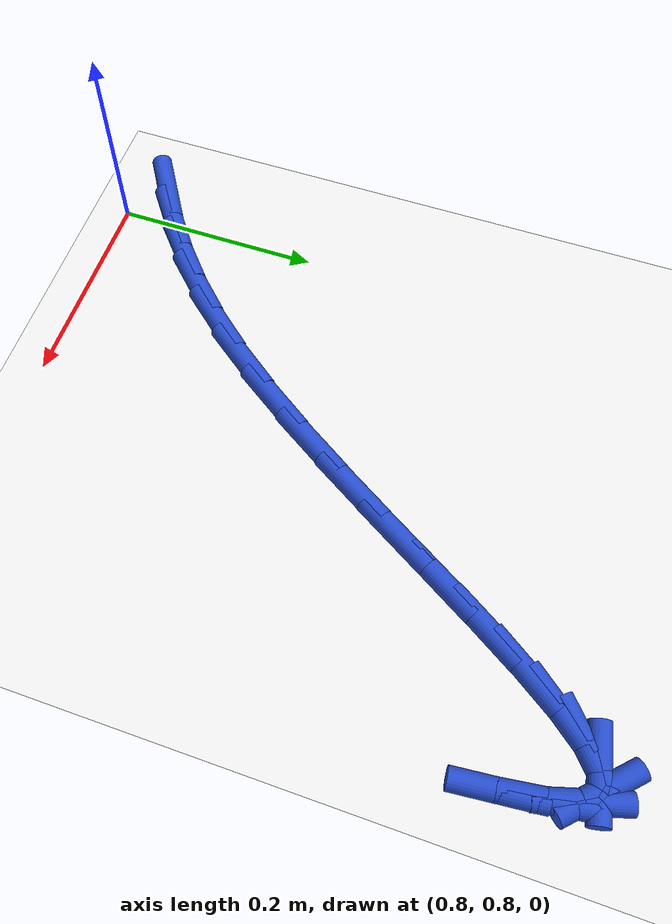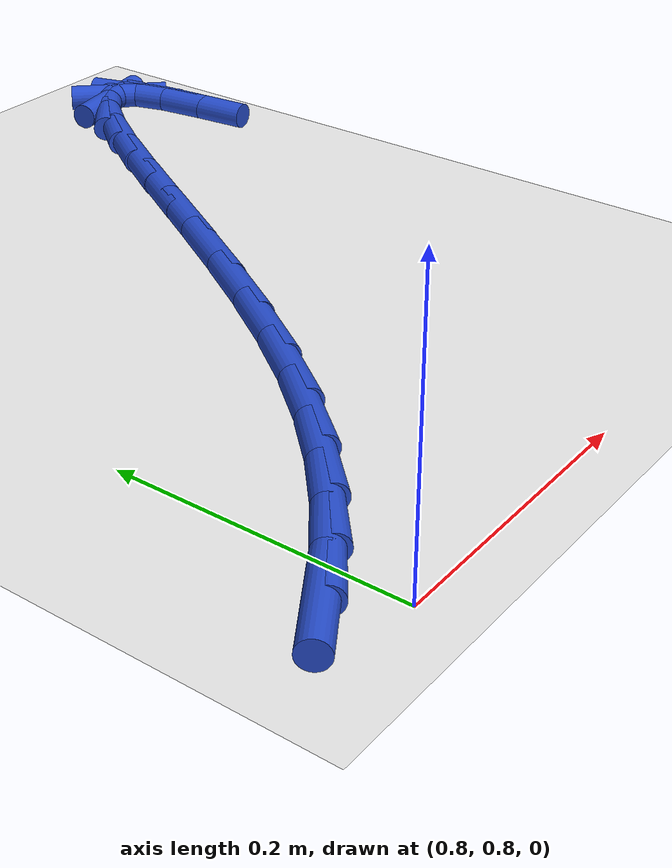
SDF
<sdf version="1.6">
 <world name="default">
  <model name="ground_plane">
   <static>1</static>
   <link name="link">
    <collision name="collision">
     <geometry><plane><normal>0 0 1</normal><size>100 100</size></plane></geometry>
     <surface><friction><ode><mu>100</mu><mu2>50</mu2></ode></friction></surface>
    </collision>
    <visual name="visual">
     <cast_shadows>0</cast_shadows>
     <geometry><plane><normal>0 0 1</normal><size>100 100</size></plane></geometry>
     <material>
      <script><uri>file://media/materials/scripts/gazebo.material</uri><name>Gazebo/WhiteGlow</name></script>
     </material>
    </visual>
   </link>
  </model>
  <model name="line">
   <link name="link_34">
    <pose>0.76474897388359 0.8316724965072351 0.01 0 1.57 0.5468732517467415</pose>
    <collision name="collision">
     <geometry><cylinder><radius>0.01</radius><length>0.08</length></cylinder></geometry>
    </collision>
    <visual name="visual">
     <material>
      <script><name>Gazebo/Blue</name><uri>file://media/materials/scripts/gazebo.material</uri></script>
     </material>
     <geometry><cylinder><radius>0.01</radius><length>0.08</length></cylinder></geometry>
    </visual>
   </link>
   <link name="link_35">
    <pose>0.79950718605989 0.8528336903799779 0.01 0 1.57 0.6298328229557189</pose>
    <collision name="collision">
     <geometry><cylinder><radius>0.01</radius><length>0.08</length></cylinder></geometry>
    </collision>
    <visual name="visual">
     <material>
      <script><name>Gazebo/Blue</name><uri>file://media/materials/scripts/gazebo.material</uri></script>
     </material>
     <geometry><cylinder><radius>0.01</radius><length>0.08</length></cylinder></geometry>
    </visual>
   </link>
   <link name="link_36">
    <pose>0.8337913747681874 0.8778220199592466 0.01 0 1.57 0.7117884166552221</pose>
    <collision name="collision">
     <geometry><cylinder><radius>0.01</radius><length>0.08</length></cylinder></geometry>
    </collision>
    <visual name="visual">
     <material>
      <script><name>Gazebo/Blue</name><uri>file://media/materials/scripts/gazebo.material</uri></script>
     </material>
     <geometry><cylinder><radius>0.01</radius><length>0.08</length></cylinder></geometry>
    </visual>
   </link>
   <link name="link_37">
    <pose>0.867627015403393 0.9070101031133782 0.01 0 1.57 0.7905770807191329</pose>
    <collision name="collision">
     <geometry><cylinder><radius>0.01</radius><length>0.08</length></cylinder></geometry>
    </collision>
    <visual name="visual">
     <material>
      <script><name>Gazebo/Blue</name><uri>file://media/materials/scripts/gazebo.material</uri></script>
     </material>
     <geometry><cylinder><radius>0.01</radius><length>0.08</length></cylinder></geometry>
    </visual>
   </link>
   <link name="link_38">
    <pose>0.901039583360418 0.9407705577107093 0.01 0 1.57 0.8645747442121784</pose>
    <collision name="collision">
     <geometry><cylinder><radius>0.01</radius><length>0.08</length></cylinder></geometry>
    </collision>
    <visual name="visual">
     <material>
      <script><name>Gazebo/Blue</name><uri>file://media/materials/scripts/gazebo.material</uri></script>
     </material>
     <geometry><cylinder><radius>0.01</radius><length>0.08</length></cylinder></geometry>
    </visual>
   </link>
   <link name="link_39">
    <pose>0.9340545540341735 0.9794760016195772 0.01 0 1.57 0.9299229409245141</pose>
    <collision name="collision">
     <geometry><cylinder><radius>0.01</radius><length>0.08</length></cylinder></geometry>
    </collision>
    <visual name="visual">
     <material>
      <script><name>Gazebo/Blue</name><uri>file://media/materials/scripts/gazebo.material</uri></script>
     </material>
     <geometry><cylinder><radius>0.01</radius><length>0.08</length></cylinder></geometry>
    </visual>
   </link>
   <link name="link_40">
    <pose>0.966652335631667 1.0231784862646711 0.01 0 1.57 0.9770418076062122</pose>
    <collision name="collision">
     <geometry><cylinder><radius>0.01</radius><length>0.08</length></cylinder></geometry>
    </collision>
    <visual name="visual">
     <material>
      <script><name>Gazebo/Blue</name><uri>file://media/materials/scripts/gazebo.material</uri></script>
     </material>
     <geometry><cylinder><radius>0.01</radius><length>0.08</length></cylinder></geometry>
    </visual>
   </link>
   <link name="link_41">
    <pose>0.9986169186587432 1.0705329285508542 0.01 0 1.57 1.0083919957232428</pose>
    <collision name="collision">
     <geometry><cylinder><radius>0.01</radius><length>0.08</length></cylinder></geometry>
    </collision>
    <visual name="visual">
     <material>
      <script><name>Gazebo/Blue</name><uri>file://media/materials/scripts/gazebo.material</uri></script>
     </material>
     <geometry><cylinder><radius>0.01</radius><length>0.08</length></cylinder></geometry>
    </visual>
   </link>
   <link name="link_42">
    <pose>1.0296787967351808 1.119813717834889 0.01 0 1.57 1.0273989495254094</pose>
    <collision name="collision">
     <geometry><cylinder><radius>0.01</radius><length>0.08</length></cylinder></geometry>
    </collision>
    <visual name="visual">
     <material>
      <script><name>Gazebo/Blue</name><uri>file://media/materials/scripts/gazebo.material</uri></script>
     </material>
     <geometry><cylinder><radius>0.01</radius><length>0.08</length></cylinder></geometry>
    </visual>
   </link>
   <link name="link_43">
    <pose>1.0595684623324828 1.1692952353057666 0.01 0 1.57 1.0353906798098473</pose>
    <collision name="collision">
     <geometry><cylinder><radius>0.01</radius><length>0.08</length></cylinder></geometry>
    </collision>
    <visual name="visual">
     <material>
      <script><name>Gazebo/Blue</name><uri>file://media/materials/scripts/gazebo.material</uri></script>
     </material>
     <geometry><cylinder><radius>0.01</radius><length>0.08</length></cylinder></geometry>
    </visual>
   </link>
   <link name="link_44">
    <pose>1.0880164079221522 1.2172518621524775 0.01 0 1.57 1.031808184294277</pose>
    <collision name="collision">
     <geometry><cylinder><radius>0.01</radius><length>0.08</length></cylinder></geometry>
    </collision>
    <visual name="visual">
     <material>
      <script><name>Gazebo/Blue</name><uri>file://media/materials/scripts/gazebo.material</uri></script>
     </material>
     <geometry><cylinder><radius>0.01</radius><length>0.08</length></cylinder></geometry>
    </visual>
   </link>
   <link name="link_45">
    <pose>1.1147531259756915 1.2619579795640128 0.01 0 1.57 1.0135603595255736</pose>
    <collision name="collision">
     <geometry><cylinder><radius>0.01</radius><length>0.08</length></cylinder></geometry>
    </collision>
    <visual name="visual">
     <material>
      <script><name>Gazebo/Blue</name><uri>file://media/materials/scripts/gazebo.material</uri></script>
     </material>
     <geometry><cylinder><radius>0.01</radius><length>0.08</length></cylinder></geometry>
    </visual>
   </link>
   <link name="link_46">
    <pose>1.139509108964605 1.3016879687293639 0.01 0 1.57 0.9726568364648543</pose>
    <collision name="collision">
     <geometry><cylinder><radius>0.01</radius><length>0.08</length></cylinder></geometry>
    </collision>
    <visual name="visual">
     <material>
      <script><name>Gazebo/Blue</name><uri>file://media/materials/scripts/gazebo.material</uri></script>
     </material>
     <geometry><cylinder><radius>0.01</radius><length>0.08</length></cylinder></geometry>
    </visual>
   </link>
   <link name="link_47">
    <pose>1.1620148493603948 1.3347162108375208 0.01 0 1.57 0.8885341719777671</pose>
    <collision name="collision">
     <geometry><cylinder><radius>0.01</radius><length>0.08</length></cylinder></geometry>
    </collision>
    <visual name="visual">
     <material>
      <script><name>Gazebo/Blue</name><uri>file://media/materials/scripts/gazebo.material</uri></script>
     </material>
     <geometry><cylinder><radius>0.01</radius><length>0.08</length></cylinder></geometry>
    </visual>
   </link>
   <link name="link_48">
    <pose>1.1820008396345643 1.3593170870774745 0.01 0 1.57 0.6987496948332145</pose>
    <collision name="collision">
     <geometry><cylinder><radius>0.01</radius><length>0.08</length></cylinder></geometry>
    </collision>
    <visual name="visual">
     <material>
      <script><name>Gazebo/Blue</name><uri>file://media/materials/scripts/gazebo.material</uri></script>
     </material>
     <geometry><cylinder><radius>0.01</radius><length>0.08</length></cylinder></geometry>
    </visual>
   </link>
   <link name="link_49">
    <pose>1.1991975722586163 1.3737649786382164 0.01 0 1.57 0.17976781300560304</pose>
    <collision name="collision">
     <geometry><cylinder><radius>0.01</radius><length>0.08</length></cylinder></geometry>
    </collision>
    <visual name="visual">
     <material>
      <script><name>Gazebo/Blue</name><uri>file://media/materials/scripts/gazebo.material</uri></script>
     </material>
     <geometry><cylinder><radius>0.01</radius><length>0.08</length></cylinder></geometry>
    </visual>
   </link>
   <link name="link_50">
    <pose>1.2133355397040542 1.376334266708737 0.01 0 1.57 -0.7957087761802857</pose>
    <collision name="collision">
     <geometry><cylinder><radius>0.01</radius><length>0.08</length></cylinder></geometry>
    </collision>
    <visual name="visual">
     <material>
      <script><name>Gazebo/Blue</name><uri>file://media/materials/scripts/gazebo.material</uri></script>
     </material>
     <geometry><cylinder><radius>0.01</radius><length>0.08</length></cylinder></geometry>
    </visual>
   </link>
   <link name="link_51">
    <pose>1.2241452344423807 1.3652993324780276 0.01 0 1.57 -1.2891943024898151</pose>
    <collision name="collision">
     <geometry><cylinder><radius>0.01</radius><length>0.08</length></cylinder></geometry>
    </collision>
    <visual name="visual">
     <material>
      <script><name>Gazebo/Blue</name><uri>file://media/materials/scripts/gazebo.material</uri></script>
     </material>
     <geometry><cylinder><radius>0.01</radius><length>0.08</length></cylinder></geometry>
    </visual>
   </link>
   <link name="link_52">
    <pose>1.231565157312084 1.339650562524224 0.01 0 1.57 -1.4331246955087147</pose>
    <collision name="collision">
     <geometry><cylinder><radius>0.01</radius><length>0.08</length></cylinder></geometry>
    </collision>
    <visual name="visual">
     <material>
      <script><name>Gazebo/Blue</name><uri>file://media/materials/scripts/gazebo.material</uri></script>
     </material>
     <geometry><cylinder><radius>0.01</radius><length>0.08</length></cylinder></geometry>
    </visual>
   </link>
   <link name="link_53">
    <pose>1.2367184004669716 1.3024559378895586 0.01 0 1.57 -1.4710093863283586</pose>
    <collision name="collision">
     <geometry><cylinder><radius>0.01</radius><length>0.08</length></cylinder></geometry>
    </collision>
    <visual name="visual">
     <material>
      <script><name>Gazebo/Blue</name><uri>file://media/materials/scripts/gazebo.material</uri></script>
     </material>
     <geometry><cylinder><radius>0.01</radius><length>0.08</length></cylinder></geometry>
    </visual>
   </link>
  </model>
 </world>
</sdf>
